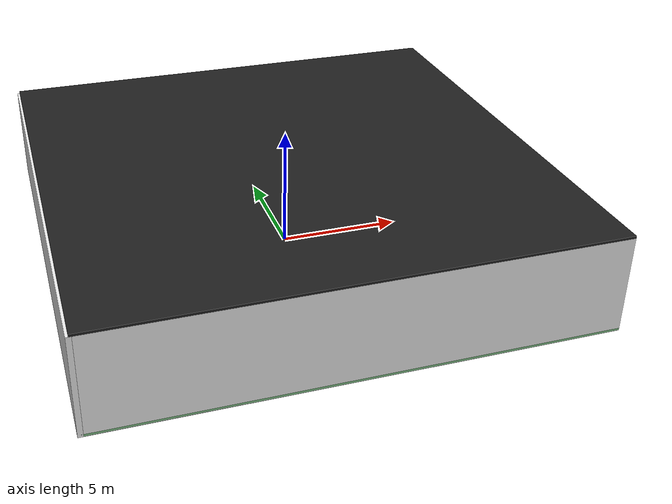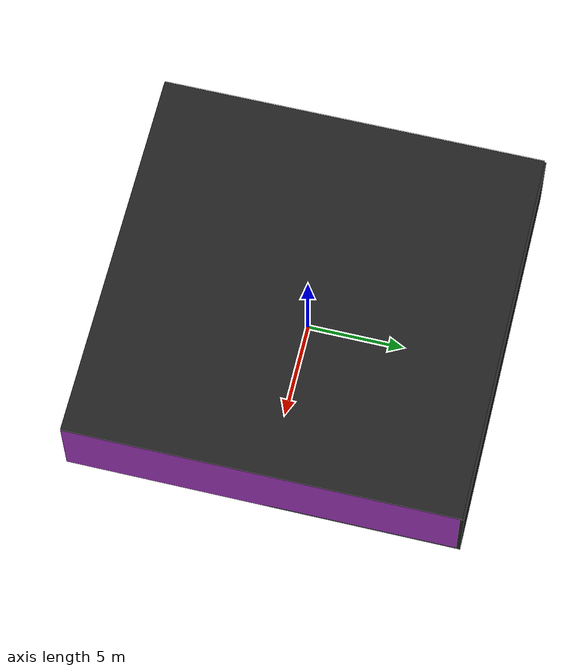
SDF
<sdf version="1.4">
 <world name="default">
  <physics type="ode">
   <max_step_size>0.001</max_step_size>
   <real_time_factor>1</real_time_factor>
   <real_time_update_rate>1000</real_time_update_rate>
   <gravity>0 0 -9.8</gravity>
  </physics>
  <scene><ambient>0.4 0.4 0.4 1</ambient><background>0.7 0.7 0.7 1</background><shadows>1</shadows></scene>
  <model name="Surrounding">
   <static>1</static>
   <link name="Ceiling">
    <collision name="Ceiling_Collision"><geometry><box><size>20 20 0.1</size></box></geometry></collision>
    <visual name="Ceiling_Visual">
     <geometry><box><size>20 20 0.1</size></box></geometry>
     <material>
      <script><uri>file://media/materials/scripts/gazebo.material</uri><name>Gazebo/FlatBlack</name></script>
     </material>
    </visual>
    <pose>0 0 4.05 0 0 0</pose>
   </link>
   <link name="Wall_South">
    <collision name="Wall_South_Collision">
     <geometry><box><size>20 0 4</size></box></geometry>
     <pose>0 0 2 0 -0 0</pose>
    </collision>
    <visual name="Wall_South_Visual">
     <pose>0 0 2 0 -0 0</pose>
     <geometry><box><size>20 0 4</size></box></geometry>
     <material>
      <script><uri>file://media/materials/scripts/gazebo.material</uri><name>Gazebo/WhiteGlow</name></script>
     </material>
    </visual>
    <velocity_decay><linear>0</linear><angular>0</angular></velocity_decay>
    <pose>0 -10 0 0 -0 0</pose>
   </link>
   <link name="Wall_East">
    <collision name="Wall_21_Collision">
     <geometry><box><size>20 0 4</size></box></geometry>
     <pose>0 0 2 0 -0 0</pose>
    </collision>
    <visual name="Wall_21_Visual">
     <pose>0 0 2 0 -0 0</pose>
     <geometry><box><size>20 0 4</size></box></geometry>
     <material>
      <script><uri>file://media/materials/scripts/gazebo.material</uri><name>Gazebo/Purple</name></script>
     </material>
    </visual>
    <velocity_decay><linear>0</linear><angular>0</angular></velocity_decay>
    <pose>10 0 0 0 -0 1.5708</pose>
   </link>
   <link name="Wall_North">
    <collision name="Wall_22_Collision">
     <geometry><box><size>20 0.2 4</size></box></geometry>
     <pose>0 0 2 0 -0 0</pose>
    </collision>
    <visual name="Wall_22_Visual">
     <pose>0 0 2 0 -0 0</pose>
     <geometry><box><size>20 0.2 4</size></box></geometry>
     <material>
      <script><uri>file://media/materials/scripts/gazebo.material</uri><name>Gazebo/Black</name></script>
     </material>
    </visual>
    <velocity_decay><linear>0</linear><angular>0</angular></velocity_decay>
    <pose>0 10 0 0 -0 0</pose>
   </link>
   <link name="Wall_West">
    <collision name="Wall_23_Collision">
     <geometry><box><size>20 0.2 4</size></box></geometry>
     <pose>0 0 2 0 -0 0</pose>
    </collision>
    <visual name="Wall_23_Visual">
     <pose>0 0 2 0 -0 0</pose>
     <geometry><box><size>20 0.2 4</size></box></geometry>
     <material>
      <script><uri>file://media/materials/scripts/gazebo.material</uri><name>Gazebo/WhiteGlow</name></script>
     </material>
    </visual>
    <velocity_decay><linear>0</linear><angular>0</angular></velocity_decay>
    <pose>-10 0 0 0 0 -1.5708</pose>
   </link>
   <link name="Ground_link">
    <collision name="collision">
     <pose>0 0 .05 0 -0 0</pose>
     <geometry><box><size>20 20 0.1</size></box></geometry>
    </collision>
    <visual name="visual">
     <pose>0 0 .05 0 -0 0</pose>
     <geometry><box><size>20 20 0.1</size></box></geometry>
     <material>
      <script><uri>file://media/materials/scripts/gazebo.material</uri><name>Gazebo/GreenTransparent</name></script>
     </material>
    </visual>
   </link>
   <static>1</static>
  </model>
  <spherical_coordinates>
   <surface_model>EARTH_WGS84</surface_model>
   <latitude_deg>0</latitude_deg>
   <longitude_deg>0</longitude_deg>
   <elevation>0</elevation>
   <heading_deg>0</heading_deg>
  </spherical_coordinates>
  <light name="lightball_0" type="diffuse">
   <diffuse>0.8 0.8 0.8 1</diffuse>
   <specular>0.2 0.2 0.2 1</specular>
   <attenuation>
    <range>100</range>
    <constant>0.7</constant>
    <linear>0.01</linear>
    <quadratic>0.001</quadratic>
   </attenuation>
   <direction>-0.5 0.1 -0.9</direction>
   <pose>-4.10825575144 -8.79270227783 1.8774003354 0 0 0</pose>
  </light>
  <light name="lightball_1" type="diffuse">
   <diffuse>0.8 0.8 0.8 1</diffuse>
   <specular>0.2 0.2 0.2 1</specular>
   <attenuation>
    <range>100</range>
    <constant>0.7</constant>
    <linear>0.01</linear>
    <quadratic>0.001</quadratic>
   </attenuation>
   <direction>-0.5 0.1 -0.9</direction>
   <pose>-5.07919150362 5.61650375289 1.1628789889 0 0 0</pose>
  </light>
  <light name="lightball_2" type="diffuse">
   <diffuse>0.8 0.8 0.8 1</diffuse>
   <specular>0.2 0.2 0.2 1</specular>
   <attenuation>
    <range>100</range>
    <constant>0.7</constant>
    <linear>0.01</linear>
    <quadratic>0.001</quadratic>
   </attenuation>
   <direction>-0.5 0.1 -0.9</direction>
   <pose>-9.38704535491 0.154999144764 1.01599996724 0 0 0</pose>
  </light>
  <light name="lightball_3" type="diffuse">
   <diffuse>0.8 0.8 0.8 1</diffuse>
   <specular>0.2 0.2 0.2 1</specular>
   <attenuation>
    <range>100</range>
    <constant>0.7</constant>
    <linear>0.01</linear>
    <quadratic>0.001</quadratic>
   </attenuation>
   <direction>-0.5 0.1 -0.9</direction>
   <pose>-5.52975223436 -5.02139479032 1.79803941938 0 0 0</pose>
  </light>
  <light name="lightball_4" type="diffuse">
   <diffuse>0.8 0.8 0.8 1</diffuse>
   <specular>0.2 0.2 0.2 1</specular>
   <attenuation>
    <range>100</range>
    <constant>0.7</constant>
    <linear>0.01</linear>
    <quadratic>0.001</quadratic>
   </attenuation>
   <direction>-0.5 0.1 -0.9</direction>
   <pose>-8.89994988628 -6.57408893439 2.29975783804 0 0 0</pose>
  </light>
  <light name="lightball_5" type="diffuse">
   <diffuse>0.8 0.8 0.8 1</diffuse>
   <specular>0.2 0.2 0.2 1</specular>
   <attenuation>
    <range>100</range>
    <constant>0.7</constant>
    <linear>0.01</linear>
    <quadratic>0.001</quadratic>
   </attenuation>
   <direction>-0.5 0.1 -0.9</direction>
   <pose>6.44226834345 -5.48104566178 3.72160273763 0 0 0</pose>
  </light>
  <light name="lightball_6" type="diffuse">
   <diffuse>0.8 0.8 0.8 1</diffuse>
   <specular>0.2 0.2 0.2 1</specular>
   <attenuation>
    <range>100</range>
    <constant>0.7</constant>
    <linear>0.01</linear>
    <quadratic>0.001</quadratic>
   </attenuation>
   <direction>-0.5 0.1 -0.9</direction>
   <pose>7.25211536106 -1.64455898911 3.1609974368 0 0 0</pose>
  </light>
  <light name="lightball_7" type="diffuse">
   <diffuse>0.8 0.8 0.8 1</diffuse>
   <specular>0.2 0.2 0.2 1</specular>
   <attenuation>
    <range>100</range>
    <constant>0.7</constant>
    <linear>0.01</linear>
    <quadratic>0.001</quadratic>
   </attenuation>
   <direction>-0.5 0.1 -0.9</direction>
   <pose>-9.37117563267 4.59929277502 1.9040799784 0 0 0</pose>
  </light>
  <light name="lightball_8" type="diffuse">
   <diffuse>0.8 0.8 0.8 1</diffuse>
   <specular>0.2 0.2 0.2 1</specular>
   <attenuation>
    <range>100</range>
    <constant>0.7</constant>
    <linear>0.01</linear>
    <quadratic>0.001</quadratic>
   </attenuation>
   <direction>-0.5 0.1 -0.9</direction>
   <pose>8.19546875283 2.62106142145 0.868883765925 0 0 0</pose>
  </light>
  <include>
   <uri>model://construction_cone</uri>
   <pose>-7.24422076175 -3.92320128498 0 0 0 0.364342048042</pose>
  </include>
  <include>
   <uri>model://robocup_3Dsim_goal</uri>
   <pose>1.55552277523 -6.90362768833 0 0 0 1.96119839472</pose>
  </include>
  <include>
   <uri>model://construction_cone</uri>
   <pose>1.36268970238 3.96428994522 0 0 0 2.71152330097</pose>
  </include>
  <include><uri>model://cabinet</uri><pose>2.24887086352 6.8258709099 0 0 0 0.352387145094</pose></include>
 </world>
</sdf>

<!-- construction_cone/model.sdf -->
<sdf version="1.5">
  <model name="Construction Cone">
    <link name="link">
      <collision name="collision">
        <geometry>
          <mesh>
            <scale>10 10 10</scale>
            <uri>file://isr-testbed/construction_cone/meshes/construction_cone.dae</uri>
          </mesh>
        </geometry>
      </collision>
      <visual name="visual">
        <geometry>
          <mesh>
            <scale>10 10 10</scale>
            <uri>file://isr-testbed/construction_cone/meshes/construction_cone.dae</uri>
          </mesh>
        </geometry>
      </visual>
    </link>
  </model>
</sdf>

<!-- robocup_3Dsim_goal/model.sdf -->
<sdf version="1.5">
  <model name="robocup_3d_goal">
    <static>true</static>
    <link name="left_post">
      <pose>0 1.05 0.45 0 0 0</pose>
      <collision name="collision">
        <geometry>
          <cylinder>
            <radius>0.05</radius>
            <length>0.9</length>
          </cylinder>
        </geometry>
      </collision>
      <visual name="visual">
        <geometry>
          <cylinder>
            <radius>0.05</radius>
            <length>0.9</length>
          </cylinder>
        </geometry>
        <material>
          <script>
            <uri>file://media/materials/scripts/gazebo.material</uri>
            <name>Gazebo/ZincYellow</name>
          </script>
        </material>
      </visual>
    </link>
    <link name="left_support_horiz_lower">
      <pose>0.30 1.05 0.01 0 0 0</pose>
      <collision name="collision">
        <geometry>
          <box>
            <size>0.50 0.02 0.02</size>
          </box>
        </geometry>
      </collision>
      <visual name="visual">
        <geometry>
          <box>
            <size>0.50 0.02 0.02</size>
          </box>
        </geometry>
        <material>
          <script>
            <uri>file://media/materials/scripts/gazebo.material</uri>
            <name>Gazebo/White</name>
          </script>
        </material>
      </visual>
    </link>
    <link name="left_support_horiz_upper">
      <pose>0.30 1.05 0.79 0 0 0</pose>
      <collision name="collision">
        <geometry>
          <box>
            <size>0.50 0.02 0.02</size>
          </box>
        </geometry>
      </collision>
      <visual name="visual">
        <geometry>
          <box>
            <size>0.50 0.02 0.02</size>
          </box>
        </geometry>
        <material>
          <script>
            <uri>file://media/materials/scripts/gazebo.material</uri>
            <name>Gazebo/White</name>
          </script>
        </material>
      </visual>
    </link>
    <link name="left_support_vertical">
      <pose>0.56 1.05 0.4 0 1.5708 0</pose>
      <collision name="collision">
        <geometry>
          <box>
            <size>0.80 0.02 0.02</size>
          </box>
        </geometry>
      </collision>
      <visual name="visual">
        <geometry>
          <box>
            <size>0.80 0.02 0.02</size>
          </box>
        </geometry>
        <material>
          <script>
            <uri>file://media/materials/scripts/gazebo.material</uri>
            <name>Gazebo/White</name>
          </script>
        </material>
      </visual>
    </link>
    <link name="right_support_horiz_lower">
      <pose>0.30 -1.05 0.01 0 0 0</pose>
      <collision name="collision">
        <geometry>
          <box>
            <size>0.50 0.02 0.02</size>
          </box>
        </geometry>
      </collision>
      <visual name="visual">
        <geometry>
          <box>
            <size>0.50 0.02 0.02</size>
          </box>
        </geometry>
        <material>
          <script>
            <uri>file://media/materials/scripts/gazebo.material</uri>
            <name>Gazebo/White</name>
          </script>
        </material>
      </visual>
    </link>
    <link name="right_support_horiz_upper">
      <pose>0.30 -1.05 0.79 0 0 0</pose>
      <collision name="collision">
        <geometry>
          <box>
            <size>0.50 0.02 0.02</size>
          </box>
        </geometry>
      </collision>
      <visual name="visual">
        <geometry>
          <box>
            <size>0.50 0.02 0.02</size>
          </box>
        </geometry>
        <material>
          <script>
            <uri>file://media/materials/scripts/gazebo.material</uri>
            <name>Gazebo/White</name>
          </script>
        </material>
      </visual>
    </link>
    <link name="right_support_vertical">
      <pose>0.56 -1.05 0.4 0 1.5708 0</pose>
      <collision name="collision">
        <geometry>
          <box>
            <size>0.80 0.02 0.02</size>
          </box>
        </geometry>
      </collision>
      <visual name="visual">
        <geometry>
          <box>
            <size>0.80 0.02 0.02</size>
          </box>
        </geometry>
        <material>
          <script>
            <uri>file://media/materials/scripts/gazebo.material</uri>
            <name>Gazebo/White</name>
          </script>
        </material>
      </visual>
    </link>
    <link name="center_support_horiz_lower">
      <pose>0.56 0 0.01 0 1.5708 0</pose>
      <collision name="collision">
        <geometry>
          <box>
            <size>0.02 2.08 0.02</size>
          </box>
        </geometry>
      </collision>
      <visual name="visual">
        <geometry>
          <box>
            <size>0.02 2.08 0.02</size>
          </box>
        </geometry>
        <material>
          <script>
            <uri>file://media/materials/scripts/gazebo.material</uri>
            <name>Gazebo/White</name>
          </script>
        </material>
      </visual>
    </link>
    <link name="center_support_horiz_upper">
      <pose>0.56 0 0.79 0 1.5708 0</pose>
      <collision name="collision">
        <geometry>
          <box>
            <size>0.02 2.08 0.02</size>
          </box>
        </geometry>
      </collision>
      <visual name="visual">
        <geometry>
          <box>
            <size>0.02 2.08 0.02</size>
          </box>
        </geometry>
        <material>
          <script>
            <uri>file://media/materials/scripts/gazebo.material</uri>
            <name>Gazebo/White</name>
          </script>
        </material>
      </visual>
    </link>
    <link name="right_post">
      <pose>0 -1.05 0.45 0 0 0</pose>
      <collision name="collision">
        <geometry>
          <cylinder>
            <radius>0.05</radius>
            <length>0.9</length>
          </cylinder>
        </geometry>
      </collision>
      <visual name="visual">
        <geometry>
          <cylinder>
            <radius>0.05</radius>
            <length>0.9</length>
          </cylinder>
        </geometry>
        <material>
          <script>
            <uri>file://media/materials/scripts/gazebo.material</uri>
            <name>Gazebo/ZincYellow</name>
          </script>
        </material>
      </visual>
    </link>
    <link name="crossbar">
      <pose>0 0 0.85 1.57 1.57 0</pose>
      <collision name="collision">
        <geometry>
          <cylinder>
            <radius>0.05</radius>
            <length>2.0</length>
          </cylinder>
        </geometry>
      </collision>
      <visual name="visual">
        <geometry>
          <cylinder>
            <radius>0.05</radius>
            <length>2.0</length>
          </cylinder>
        </geometry>
        <material>
          <script>
            <uri>file://media/materials/scripts/gazebo.material</uri>
            <name>Gazebo/ZincYellow</name>
          </script>
        </material>
      </visual>
    </link>
    <link name="center_net">
      <pose>0.56 0 0.40 0 0 0</pose>
      <collision name="collision">
        <geometry>
          <box>
            <size>0.01 2.1 0.80</size>
          </box>
        </geometry>
      </collision>
      <visual name="visual">
        <geometry>
          <box>
            <size>0.01 2.1 0.80</size>
          </box>
        </geometry>
        <material>
          <script>
            <uri>model://../model_source/models/robocup09_spl_field/materials/scripts/</uri>
            <uri>model://../model_source/models/robocup09_spl_field/materials/textures/</uri>
            <name>RoboCup/Net</name>
          </script>
        </material>
      </visual>
    </link>
    <link name="left_net">
      <pose>0.30 1.05 0.40 0 0 0</pose>
      <collision name="collision">
        <geometry>
          <box>
            <size>0.50 0.01 0.76</size>
          </box>
        </geometry>
      </collision>
      <visual name="visual">
        <geometry>
          <box>
            <size>0.50 0.01 0.76</size>
          </box>
        </geometry>
        <material>
          <script>
            <uri>model://../model_source/models/robocup09_spl_field/materials/scripts/</uri>
            <uri>model://../model_source/models/robocup09_spl_field/materials/textures/</uri>
            <name>RoboCup/Net</name>
          </script>
        </material>
      </visual>
    </link>
    <link name="right_net">
      <pose>0.30 -1.05 0.40 0 0 0</pose>
      <collision name="collision">
        <geometry>
          <box>
            <size>0.50 0.01 0.76</size>
          </box>
        </geometry>
      </collision>
      <visual name="visual">
        <geometry>
          <box>
            <size>0.50 0.01 0.76</size>
          </box>
        </geometry>
        <material>
          <script>
            <uri>model://../model_source/models/robocup09_spl_field/materials/scripts/</uri>
            <uri>model://../model_source/models/robocup09_spl_field/materials/textures/</uri>
            <name>RoboCup/Net</name>
          </script>
        </material>
      </visual>
    </link>
  </model>
</sdf>

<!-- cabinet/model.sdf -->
<sdf version="1.5">
  <model name="cabinet">
    <static>true</static>
    <link name="cabinet_bottom_plate">
      <inertial>
        <pose>0 0 -1 0 0 0</pose>
        <inertia>
          <ixx>2.050000</ixx>
          <ixy>0</ixy>
          <ixz>0</ixz>
          <iyy>2.050000</iyy>
          <iyz>0</iyz>
          <izz>2.050000</izz>
        </inertia>
        <mass>25.000000</mass>
      </inertial>
      <collision name="cabinet_bottom_plate_geom">
        <pose>0 0 0.010000 0 0 0</pose>
        <geometry>
          <box>
            <size>0.450000 0.450000 0.020000</size>
          </box>
        </geometry>
      </collision>
      <visual name="cabinet_bottom_plate_geom_visual">
        <pose>0 0 0.010000 0 0 0</pose>
        <geometry>
          <box>
            <size>0.450000 0.450000 0.020000</size>
          </box>
        </geometry>
        <material>
          <script>
            <uri>model://media/materials/scripts/gazebo.material</uri>
            <name>Gazebo/Wood</name>
          </script>
        </material>
      </visual>
      <collision name="cabinet_bottom_plate_geom_cabinet_back_plate">
        <pose>0.235000 0 0.510000 0 0 0</pose>
        <geometry>
          <box>
            <size>0.020000 0.450000 1.020000</size>
          </box>
        </geometry>
      </collision>
      <visual name="cabinet_bottom_plate_geom_cabinet_back_plate_visual">
        <pose>0.235000 0 0.510000 0 0 0</pose>
        <geometry>
          <box>
            <size>0.020000 0.450000 1.020000</size>
          </box>
        </geometry>
        <material>
          <script>
            <uri>model://media/materials/scripts/gazebo.material</uri>
            <name>Gazebo/Wood</name>
          </script>
        </material>
      </visual>
      <collision name="cabinet_bottom_plate_geom_cabinet_left_plate">
        <pose>0 0.235000 0.510000 0 0 0</pose>
        <geometry>
          <box>
            <size>0.450000 0.020000 1.020000</size>
          </box>
        </geometry>
      </collision>
      <visual name="cabinet_bottom_plate_geom_cabinet_left_plate_visual">
        <pose>0 0.235000 0.510000 0 0 0</pose>
        <geometry>
          <box>
            <size>0.450000 0.020000 1.020000</size>
          </box>
        </geometry>
        <material>
          <script>
            <uri>model://media/materials/scripts/gazebo.material</uri>
            <name>Gazebo/Wood</name>
          </script>
        </material>
      </visual>
      <collision name="cabinet_bottom_plate_geom_cabinet_middle_plate">
        <pose>0 0 0.510000 0 0 0</pose>
        <geometry>
          <box>
            <size>0.450000 0.450000 0.020000</size>
          </box>
        </geometry>
      </collision>
      <visual name="cabinet_bottom_plate_geom_cabinet_middle_plate_visual">
        <pose>0 0 0.510000 0 0 0</pose>
        <geometry>
          <box>
            <size>0.450000 0.450000 0.020000</size>
          </box>
        </geometry>
        <material>
          <script>
            <uri>model://media/materials/scripts/gazebo.material</uri>
            <name>Gazebo/Wood</name>
          </script>
        </material>
      </visual>
      <collision name="cabinet_bottom_plate_geom_cabinet_right_plate">
        <pose>0 -0.235000 0.510000 0 0 0</pose>
        <geometry>
          <box>
            <size>0.450000 0.020000 1.020000</size>
          </box>
        </geometry>
      </collision>
      <visual name="cabinet_bottom_plate_geom_cabinet_right_plate_visual">
        <pose>0 -0.235000 0.510000 0 0 0</pose>
        <geometry>
          <box>
            <size>0.450000 0.020000 1.020000</size>
          </box>
        </geometry>
        <material>
          <script>
            <uri>model://media/materials/scripts/gazebo.material</uri>
            <name>Gazebo/Wood</name>
          </script>
        </material>
      </visual>
      <collision name="cabinet_bottom_plate_geom_cabinet_top_plate">
        <pose>0 0 1.010000 0 0 0</pose>
        <geometry>
          <box>
            <size>0.450000 0.450000 0.020000</size>
          </box>
        </geometry>
      </collision>
      <visual name="cabinet_bottom_plate_geom_cabinet_top_plate_visual">
        <pose>0 0 1.010000 0 0 0</pose>
        <geometry>
          <box>
            <size>0.450000 0.450000 0.020000</size>
          </box>
        </geometry>
        <material>
          <script>
            <uri>model://media/materials/scripts/gazebo.material</uri>
            <name>Gazebo/Wood</name>
          </script>
        </material>
      </visual>
    </link>
  </model>
</sdf>
